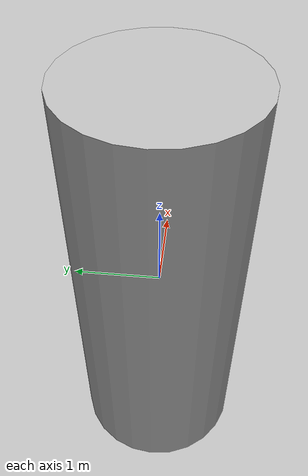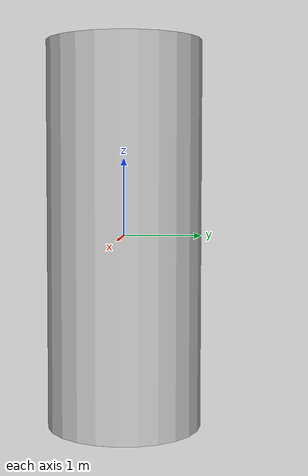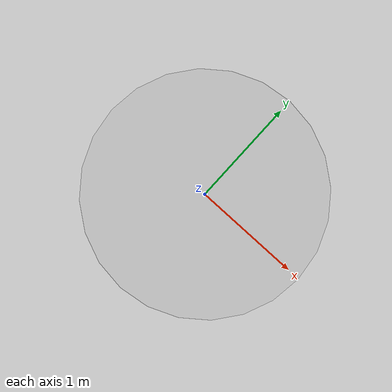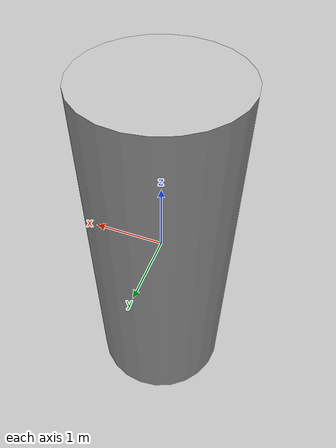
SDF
<sdf version='1.6'>
  <model name='gpsbox'>
    <link name='dummy'>
      <pose frame=''>0 0 0 0 -0 0</pose>
      <inertial>
        <pose frame=''>0 0 0 0 -0 0</pose>
        <mass>2</mass>
        <inertia>
          <ixx>4.67</ixx>
          <ixy>0</ixy>
          <ixz>0</ixz>
          <iyy>4.67</iyy>
          <iyz>0</iyz>
          <izz>1</izz>
        </inertia>
      </inertial>
      <collision name='dummy_fixed_joint_lump__base_link_collision'>
        <pose frame=''>0 0 0 0 -0 0</pose>
        <geometry>
          <cylinder>
            <length>5</length>
            <radius>1</radius>
          </cylinder>
        </geometry>
      </collision>
      <collision name='dummy_fixed_joint_lump__gps_link_collision_1'>
        <pose frame=''>0 -0.06 0 0 -0 0</pose>
        <geometry>
          <box>
            <size>0.05 0.05 0.05</size>
          </box>
        </geometry>
        <surface>
          <contact>
            <ode/>
          </contact>
          <friction>
            <ode/>
          </friction>
        </surface>
      </collision>
      <visual name='dummy_fixed_joint_lump__base_link_visual'>
        <pose frame=''>0 0 0 0 -0 0</pose>
        <geometry>
          <cylinder>
            <length>5</length>
            <radius>1</radius>
          </cylinder>
        </geometry>
      </visual>
      <visual name='dummy_fixed_joint_lump__gps_link_visual_1'>
        <pose frame=''>0 -0.06 0 0 -0 0</pose>
        <geometry>
          <box>
            <size>0.05 0.05 0.05</size>
          </box>
        </geometry>
        <material>
          <script>
            <name>Gazebo/Black</name>
            <uri>file://media/materials/scripts/gazebo.material</uri>
          </script>
        </material>
      </visual>
      <gravity>1</gravity>
      <velocity_decay/>
    </link>
  </model>
</sdf>
